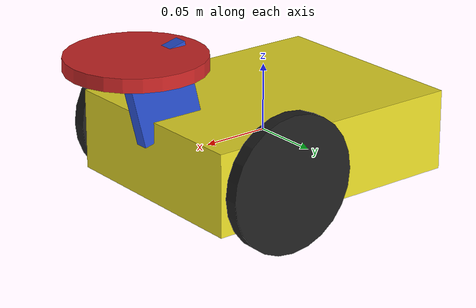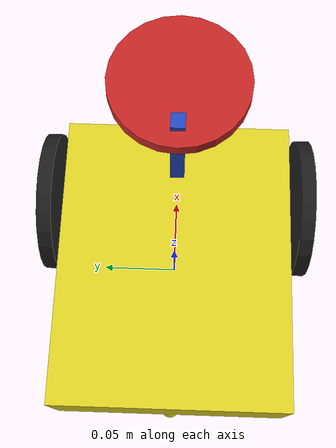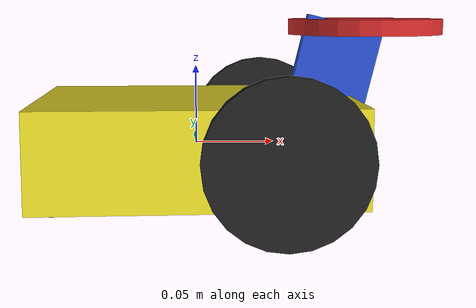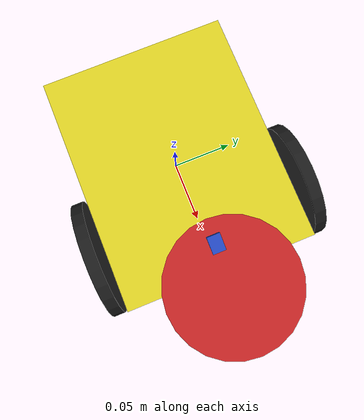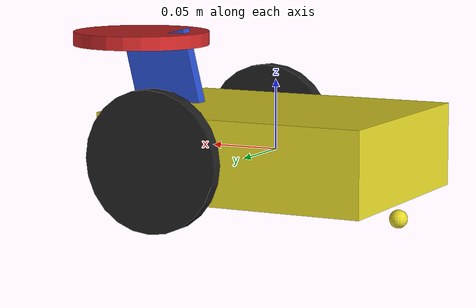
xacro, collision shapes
<?xml version="1.0" ?>
<!-- PuzzleBot differential drive -->
<robot name="puzzlebot" xmlns:xacro="http://www.ros.org/wiki/xacro">

  <!-- files for gazebo costumization -->
  <xacro:include filename="$(find puzzlebot_gazebo)/urdf/materials.xacro" />
  <xacro:include filename="$(find puzzlebot_gazebo)/urdf/parameters.xacro" />
  <xacro:include filename="$(find puzzlebot_gazebo)/urdf/macros.xacro" />
  <xacro:include filename="$(find puzzlebot_gazebo)/urdf/puzzlebot.gazebo" />

    <!-- Dummy link to fiz robot chassis -->
  <link name="base_link">
    <pose>0 1 0 0 0 0</pose>
  </link>

  <joint name="base_link_to_chassis" type="fixed">
    <parent link="base_link"/>
    <child link="chassis"/>
  </joint>

  <link name="chassis">
    <pose>0 0 0 0 0 0</pose>
    <visual>

          <!-- with mesh  -->
        <origin xyz="0 0 0" rpy="${PI/2} 0 ${PI/2}"/>
        <geometry>
          <mesh filename="file://${mesh_chassis}"/>
        </geometry>
      </visual>

      <collision name="collision_chassis">
        <origin rpy="0 0 0" xyz="0 0 0"/>
        <geometry>
          <box size="${chassisX} ${chassisY} ${chassisZ}"/>
        </geometry>
      </collision>
      <inertial>
        <mass value="${chassisMass}"/>
        <xacro:box_inertia m="${chassisMass}" x="${chassisX}" y="${chassisY}" z="${chassisZ}" />
      </inertial>

      <!-- agregar caster wheel en frame -->
      <collision>
        <origin xyz="-0.095 0 -0.0425" rpy="0 0 0"/>
        <geometry>
          <sphere radius="${casterRadius}"/>
        </geometry>
        <surface>
          <friction>
            <ode>
              <slip1>0.0</slip1>
              <slip2>0.0</slip2>
            </ode>
          </friction>
        </surface>
      </collision>

      <visual>
        <origin xyz="-0.095 0 -0.0425" rpy="0 0 0"/>
        <geometry>
          <sphere radius="${casterRadius}"/>
        </geometry>
      </visual>
    </link>

    <!--RIGHT WHEEL -->
    <link name="right_wheel">
      <visual>
        <origin xyz="0 0 0" rpy="-${PI/2} 0 0" />
        <geometry>
          <!-- with mesh-->
          <mesh filename="file://${mesh_wheel}"/>
          </geometry>
        </visual>

        <collision>
          <origin xyz="0 0 0 " rpy="-${PI/2} 0 0"/>
          <geometry>
            <cylinder length="${wheelHeight}" radius="${wheelRadius}" />
          </geometry>
        </collision>

        <inertial>
          <mass value="${wheelMass}"/>
          <origin xyz="0 0 0" rpy="${PI/2} 0 0"/>
          <xacro:wheel_inertia r="${wheelRadius}" l="${wheelHeight}" m="${wheelMass}"/>
        </inertial>

      </link>

      <!-- LEFT WHEEL -->
      <link name="left_wheel">
        <visual>
          <geometry>
            <!-- with mesh-->
            <mesh filename="file://${mesh_wheel}"/>
            </geometry>
            <origin xyz="0 0 0" rpy="${PI/2} 0 0" />
          </visual>

          <collision>
            <origin xyz="0 0 0" rpy="${PI/2} 0 0" />
            <geometry>
              <cylinder length="${wheelHeight}" radius="${wheelRadius}"/>
            </geometry>
          </collision>

          <inertial>
            <mass value="${wheelMass}"/>
            <origin xyz="0 0 0" rpy="${PI/2} 0 0"/>
            <xacro:wheel_inertia r="${wheelRadius}" l="${wheelHeight}" m="${wheelMass}" />
          </inertial>
        </link>

        <!-- CAMERA-->
        <link name="camera">
          <inertial>
            <origin rpy="0 0 0" xyz="0 0 0"/>
            <mass value="0.007"/>
            <inertia ixx="0.166667" ixy="0" ixz="0" iyy="0.166667" iyz="0" izz="0.166667"/>
              <!-- ad camera inertia -->
          </inertial>

          <collision name="collision_chassis">
            <origin rpy="0 0 0" xyz="0 0 0"/>
            <geometry>
              <box size="0.05 0.01 0.06" />
            </geometry>
          </collision>

          <visual>

            <!-- with mesh-->
            <origin rpy="${PI/2} 0 ${PI/2}" xyz="0 0 0"/>
            <geometry>
              <mesh filename="file://${mesh_camera}"/>
            </geometry>
          </visual>
        </link>

        <!-- LIDAR-->
        <link name="lidar">
          <inertial>
            <mass value="0.1" />
            <origin xyz="0 0 0" />
            <inertia ixx="0.01" ixy="0.0" ixz="0.0" iyy="0.01" iyz="0.0" izz="0.01" />
          </inertial>
          <collision>
            <origin xyz="-0.06 0.0 -0.04" rpy="0 0 0" />
            <geometry>
              <cylinder length="0.01" radius="0.05"/>
            </geometry>
          </collision>
          <visual>
            <origin rpy="${PI/2} 0 0" xyz="0.07 -0.013 -0.04" />
            <geometry>
              <mesh filename="file://${mesh_lidar}" />
            </geometry>
          </visual>
        </link>

        <!-- JOINTS  -->

        <joint name="base_to_right_w" type="continuous">
          <parent link="chassis" />
          <child link="right_wheel" />
          <origin xyz="0.05 -0.09 0.0" />
          <axis xyz="0 1 0" rpy="0 0 0" />
          </joint>

          <joint name="base_to_left_w" type="continuous">
            <parent link="chassis" />
            <child link="left_wheel" />
            <origin xyz="0.05 0.09 0" />
            <axis xyz="0 1 0" rpy="0 0 0" />
            </joint>

            <joint name="camera_to_base" type="fixed">
              <parent link="chassis" />
              <child link="camera" />
              <origin xyz="0.09 0 0.048" rpy= "0.0 0.24 0.0" />
            </joint>
            <joint name="lidar_to_base" type="fixed">
              <parent link="chassis"/>
              <child link="lidar"/>
              <origin xyz="0.05 0 0.115" rpy="0 0 ${PI}"/>
            </joint>

            <!-- TRANSMISSIONS (For a more complex model and it represents actuator attributes) -->
            <transmission name="right_wheel_trans">
              <type>transmission_interface/SimpleTransmission</type>
              <joint name="base_to_right_w">
                <hardwareInterface>hardware_interface/EffortJointInterface</hardwareInterface>
              </joint>
              <actuator name="right_wheel_motor">
                <mechanicalReduction>34</mechanicalReduction>
                <hardwareInterface>hardware_interface/EffortJointInterface</hardwareInterface>
              </actuator>
            </transmission>

            <transmission name="left_wheel_trans">
              <type>transmission_interface/SimpleTransmission</type>
              <joint name="base_to_left_w">
                <hardwareInterface>hardware_interface/EffortJointInterface</hardwareInterface>
              </joint>
              <actuator name="left_wheel_motor">
                <mechanicalReduction>34</mechanicalReduction>
                <hardwareInterface>hardware_interface/EffortJointInterface</hardwareInterface>
              </actuator>
            </transmission>

            <ros2_control name="GazeboSystem" type="system">
              <hardware>
                <plugin>gazebo_ros2_control/GazeboSystem</plugin>
              </hardware>
              <joint name="base_to_right_w">
                <command_interface name="velocity" />
                <state_interface name="position" />
                <state_interface name="velocity"/>
                <state_interface name="effort"/>
              </joint>
              <joint name="base_to_left_w">
                <command_interface name="velocity" />
                <state_interface name="position" />
                <state_interface name="velocity"/>
                <state_interface name="effort"/>
              </joint>
              <joint name="base_link_to_chassis">
                <state_interface name="position" />
                <state_interface name="velocity"/>
                <state_interface name="effort"/>
              </joint>
            </ros2_control>
          </robot>

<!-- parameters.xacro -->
<robot xmlns:xacro="http://www.ros.org/wiki/xacro">

<!--parameters for gazebo properties-->
<xacro:property name="PI" value="3.1415926535897931"/>

<xacro:property name="chassisX" value="0.2"/>
<xacro:property name="chassisY" value="0.16"/>
<xacro:property name="chassisZ" value="0.06"/>
<xacro:property name="chassisMass" value="0.710"/>

<xacro:property name="casterRadius" value="0.0065"/>
<xacro:property name="casterMass" value="0.012"/>

<xacro:property name="wheelHeight" value="0.01"/>
<xacro:property name="wheelRadius" value="0.05"/>
<xacro:property name="wheelPos" value="0.05"/>
<xacro:property name="wheelDistance" value="0.08"/>
<xacro:property name="wheelMass" value="0.03"/>

<xacro:property name="cameraSize" value="0.07"/>
<xacro:property name="cameraMass" value="0.018"/>
<xacro:property name="cameraX" value="0.02"/>
<xacro:property name="cameraY" value="0.04"/>
<xacro:property name="cameraZ" value="0.06"/>

<xacro:property name="mesh_chassis"  value="$(find puzzlebot_gazebo)/meshes/chassis.stl" />
<xacro:property name="mesh_wheel"  value="$(find puzzlebot_gazebo)/meshes/wheel.stl" />
<xacro:property name="mesh_camera"  value="$(find puzzlebot_gazebo)/meshes/camera.stl" />
<xacro:property name="mesh_lidar"  value="$(find puzzlebot_gazebo)/meshes/lidar.stl" />

</robot>

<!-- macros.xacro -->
<robot xmlns:xacro="http://www.ros.org/wiki/xacro">

<!-- note to self modify this to add wheel as left and right with -->

    <xacro:macro name="box_inertia" params="m x y z">
            <inertia
          ixx="${m/12.0 * (y*y + z*z)}" ixy="0.0" ixz="0.0"
          iyy="${m/12.0 * (z*z + x*x)}" iyz="0.0"
          izz="${m/12.0 * (y*y + x*x)}"/>
    </xacro:macro>

    <xacro:macro name="wheel_inertia" params="r l m">
               <inertia  ixx="${(m/12)*(3*((r*r)+((r/4)*(r/4)))+(l*l))}" ixy="0" ixz="0"
                iyy="${(m/12)*(3*((r*r)+((r/4)*(r/4)))+(l*l))}" iyz="0"
                izz="${(m/2)*(r*r+(r/4)*(r/4))}" />
    </xacro:macro>

</robot>
